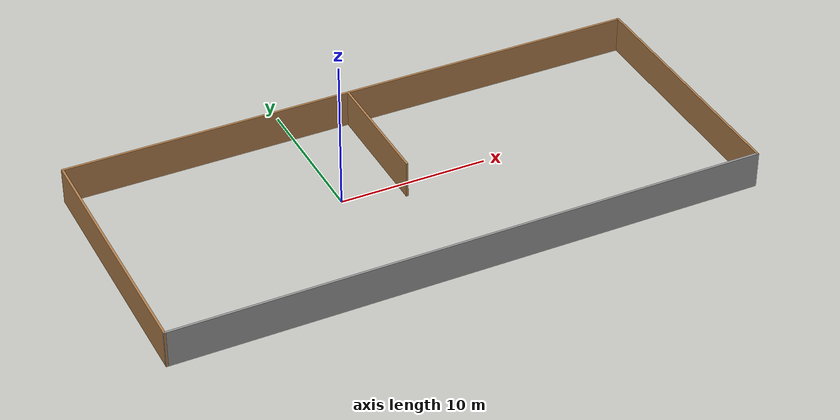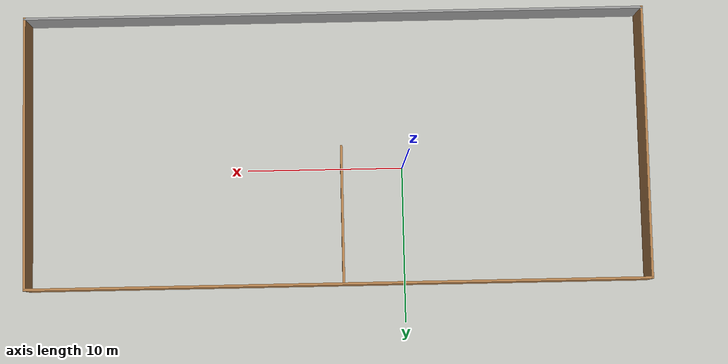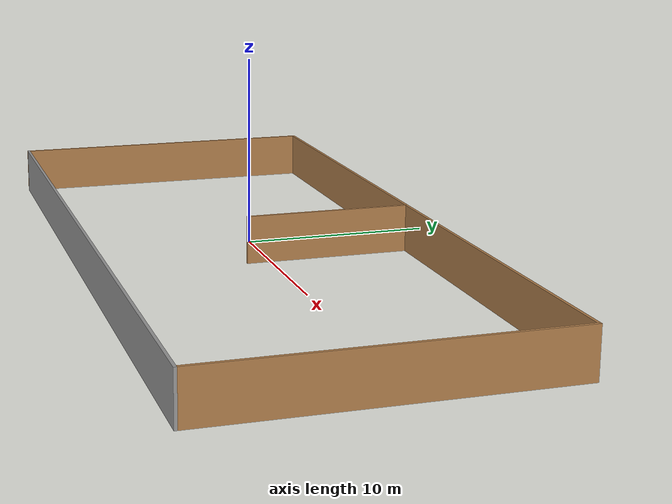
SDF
<?xml version='1.0'?>
<sdf version='1.6'>
  <model name='wall'>
    <pose frame=''>4.3 -1.155 0 0 -0 0</pose>
    <link name='Wall_0'>
      <collision name='Wall_0_Collision'>
        <geometry>
          <box>
            <size>17.5 0.15 2.5</size>
          </box>
        </geometry>
        <pose frame=''>0 0 1.25 0 -0 0</pose>
      </collision>
      <visual name='Wall_0_Visual'>
        <pose frame=''>0 0 1.25 0 -0 0</pose>
        <geometry>
          <box>
            <size>17.5 0.15 2.5</size>
          </box>
        </geometry>
        <material>
          <script>
            <uri>file://media/materials/scripts/gazebo.material</uri>
            <name>Gazebo/Wood</name>
          </script>
          <ambient>1 1 1 1</ambient>
        </material>
        <meta>
          <layer>0</layer>
        </meta>
      </visual>
      <pose frame=''>-19.8 0 0 0 -0 1.5708</pose>
    </link>
    <link name='Wall_1'>
      <collision name='Wall_1_Collision'>
        <geometry>
          <box>
            <size>39.75 0.15 2.5</size>
          </box>
        </geometry>
        <pose frame=''>0 0 1.25 0 -0 0</pose>
      </collision>
      <visual name='Wall_1_Visual'>
        <pose frame=''>0 0 1.25 0 -0 0</pose>
        <geometry>
          <box>
            <size>39.75 0.15 2.5</size>
          </box>
        </geometry>
        <material>
          <script>
            <uri>file://media/materials/scripts/gazebo.material</uri>
            <name>Gazebo/Wood</name>
          </script>
          <ambient>1 1 1 1</ambient>
        </material>
        <meta>
          <layer>0</layer>
        </meta>
      </visual>
      <pose frame=''>0 8.675 0 0 -0 0</pose>
    </link>
    <link name='Wall_2'>
      <collision name='Wall_2_Collision'>
        <geometry>
          <box>
            <size>17.5 0.15 2.5</size>
          </box>
        </geometry>
        <pose frame=''>0 0 1.25 0 -0 0</pose>
      </collision>
      <visual name='Wall_2_Visual'>
        <pose frame=''>0 0 1.25 0 -0 0</pose>
        <geometry>
          <box>
            <size>17.5 0.15 2.5</size>
          </box>
        </geometry>
        <material>
          <script>
            <uri>file://media/materials/scripts/gazebo.material</uri>
            <name>Gazebo/Wood</name>
          </script>
          <ambient>1 1 1 1</ambient>
        </material>
        <meta>
          <layer>0</layer>
        </meta>
      </visual>
      <pose frame=''>19.8 0 0 0 0 -1.5708</pose>
    </link>
    <link name='Wall_3'>
      <collision name='Wall_3_Collision'>
        <geometry>
          <box>
            <size>39.75 0.15 2.5</size>
          </box>
        </geometry>
        <pose frame=''>0 0 1.25 0 -0 0</pose>
      </collision>
      <visual name='Wall_3_Visual'>
        <pose frame=''>0 0 1.25 0 -0 0</pose>
        <geometry>
          <box>
            <size>39.75 0.15 2.5</size>
          </box>
        </geometry>
        <material>
          <script>
            <uri>file://media/materials/scripts/gazebo.material</uri>
            <name>Gazebo/Grey</name>
          </script>
          <ambient>1 1 1 1</ambient>
        </material>
        <meta>
          <layer>0</layer>
        </meta>
      </visual>
      <pose frame=''>0 -8.675 0 0 -0 3.14159</pose>
    </link>
    <link name='Wall_5'>
      <collision name='Wall_5_Collision'>
        <geometry>
          <box>
            <size>8.75 0.15 2.5</size>
          </box>
        </geometry>
        <pose frame=''>0 0 1.25 0 -0 0</pose>
      </collision>
      <visual name='Wall_5_Visual'>
        <pose frame=''>0 0 1.25 0 -0 0</pose>
        <geometry>
          <box>
            <size>8.75 0.15 2.5</size>
          </box>
        </geometry>
        <material>
          <script>
            <uri>file://media/materials/scripts/gazebo.material</uri>
            <name>Gazebo/Wood</name>
          </script>
          <ambient>0.435294 0.796078 0.67451 1</ambient>
        </material>
        <meta>
          <layer>0</layer>
        </meta>
      </visual>
      <pose frame=''>-0.352 4.267 0 0 0 -1.5708</pose>
    </link>
    <static>1</static>
  </model>
</sdf>
